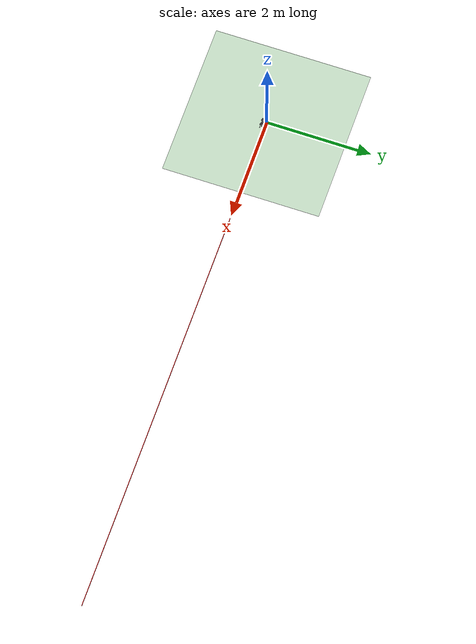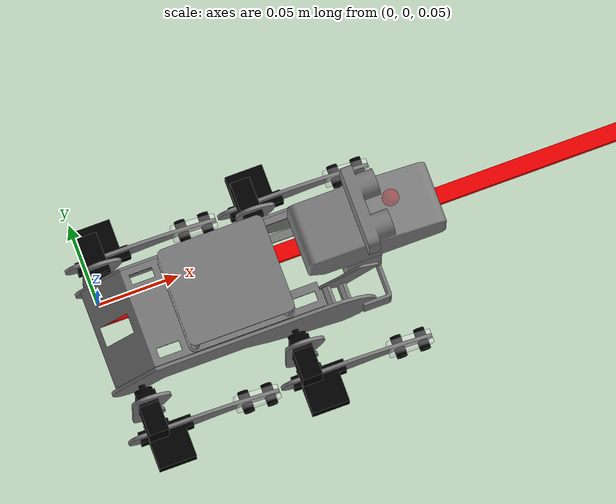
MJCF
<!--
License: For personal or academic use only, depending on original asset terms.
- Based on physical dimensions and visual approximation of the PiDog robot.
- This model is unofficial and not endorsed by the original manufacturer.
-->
<mujoco>
    <worldbody>
        <light directional='false' diffuse='.7 .7 .7' specular='0.03 0.03 0.03' pos='-1 -1.0 4.0' dir='1 1.0 -4'/>
        <geom name='ground' size="1.5 1.5 0.25" type="plane" contype="1" conaffinity="1" material="MatPlane" pos="0 0 0" rgba="0.8 0.9 0.8 1" class="collision"/>
        <geom size="1.5 1.5 0.25" type="plane" material="MatPlane" pos="0 0 0" rgba="0.8 0.9 0.8 1" class="visual"/>
        <camera name="fixed" pos="0 -0.7 0.7" quat="0.92388 0.382683 0 0" />
        <camera name="vil_camera" pos="0 -1.2 1.2" quat="0.92388 0.382683 0 0" />

        <geom name="x_axis" type="box" size="5 0.005 0.005" rgba="1.0 0.0 0.0 1.0" pos="5.0 0.0 0.0" class="visual"/>

        <body name="base" pos="0 0 0.1" euler="0.0 0.0 -1.57075">

            <geom name="eletronics_c0" mass="0.020" type="box" size="0.035 0.035 0.015" pos="0.03 0.07 0.05" class="collision"/>
            <geom name="eletronics_v" mesh="eletronics" class="visual"/>

            <geom name="torso_left_c0" mass="0.0116" mesh="torso_left_c0" class="collision"/>
            <geom name="torso_left_c1" mass="0.0116" mesh="torso_left_c1" class="collision"/>
            <geom name="torso_left_c2" mass="0.0116" mesh="torso_left_c2" class="collision"/>
            <geom name="torso_left_v" mesh="torso_left" class="visual"/>

            <geom name="torso_right_c0" mass="0.0116" mesh="torso_right_c0" class="collision"/>
            <geom name="torso_right_c1" mass="0.0116" mesh="torso_right_c1" class="collision"/>
            <geom name="torso_right_c2" mass="0.0116" mesh="torso_right_c2" class="collision"/>
            <geom name="torso_right_v" mesh="torso_right" class="visual"/>

            <geom name="back_c0" mass="0.004678" mesh="back_c0" class="collision"/>
            <geom name="back_c1" mass="0.004678" mesh="back_c1" class="collision"/>
            <geom name="back_c2" mass="0.004678" mesh="back_c2" class="collision"/>
            <geom name="back_c3" mass="0.004678" mesh="back_c3" class="collision"/>
            <geom name="back_c4" mass="0.004678" mesh="back_c4" class="collision"/>
            <geom name="back_c5" mass="0.004678" mesh="back_c5" class="collision"/>
            <geom name="back_c6" mass="0.004678" mesh="back_c6" class="collision"/>
            <geom name="back_v" mesh="back" class="visual"/>

            <geom name="chest_c0" mass="0.00354" mesh="chest_c0" class="collision"/>
            <geom name="chest_c1" mass="0.00354" mesh="chest_c1" class="collision"/>
            <geom name="chest_c2" mass="0.00354" mesh="chest_c2" class="collision"/>
            <geom name="chest_v" mesh="chest" class="visual"/>

            <site name="center" pos="0.03 0.06 0.0" size="0.007" rgba="0 1 0 0.125" />

            <!-- IMU sensor mounting site (center of body, electronics compartment) -->
            <site name="imu_site" pos="0.03 0.06 0.0" size="0.005" rgba="0 0 1 0.3" />

            <joint class="free"/>

            <!-- back rigth leg -->
            <body name="back_right_hip" pos="0.072 -0.005 0.01" euler="0.0 1.57075 0.0">

                <geom name="back_right_leg_b_c0" mass="0.00414" mesh="leg_b_c0" class="collision"/>
                <geom name="back_right_leg_b_c1" mass="0.00414" mesh="leg_b_c1" class="collision"/>
                <geom name="back_right_leg_b_v" mesh="leg_b" class="visual"/>
                <geom name="back_right_leg_b_sc" type="box" size="0.0355 0.012 0.003" rgba="1.0 0.0 0.0 0.175" pos="0.02575 0.012 0.0" class="self_collision"/>

                <geom name="back_right_leg_b_motor_c0" mass="0.00225" mesh="motor_c0" pos="0.01315 0.0096 0.0" euler="0 0 1.57075" class="collision"/>
                <geom name="back_right_leg_b_motor_c1" mass="0.00225" mesh="motor_c1" pos="0.01315 0.0096 0.0" euler="0 0 1.57075" class="collision"/>
                <geom name="back_right_leg_b_motor_c2" mass="0.00225" mesh="motor_c2" pos="0.01315 0.0096 0.0" euler="0 0 1.57075" class="collision"/>
                <geom name="back_right_leg_b_motor_c3" mass="0.00225" mesh="motor_c3" pos="0.01315 0.0096 0.0" euler="0 0 1.57075" class="collision"/>
                <geom name="back_right_leg_b_motor_v" mesh="motor" rgba="0.0 0.0 0.0 1" pos="0.01315 0.0096 0.0" euler="0 0 1.57075" class="visual"/>
                <geom name="back_right_leg_b_motor_sc" type="box" size="0.0075 0.016 0.016" rgba="1.0 0.0 0.0 0.175" pos="0.01315 0.0096 0.006" euler="0 0 1.57075" class="self_collision"/>

                <joint name="back_right_hip" type="hinge" axis="0 0 1" pos="0.0069 0.0096 0.0" damping="0.05" />

                <body name="back_right_knee" pos="0.061 0.003 0.0119" euler="0.0 0.0 1.57075" >

                    <geom name="back_right_leg_a_c0" mass="0.00730" mesh="leg_a_c0" class="collision"/>
                    <geom name="back_right_leg_a_v" mesh="leg_a" class="visual"/>
                    <geom name="back_right_leg_a_sc" type="box" size="0.047 0.010 0.006" rgba="1.0 0.0 0.0 0.175" pos="0.037 0.010 0.0" class="self_collision"/>

                    <geom name="back_right_leg_a_motor_c0" mass="0.00225" mesh="motor_c0" pos="0.01315 0.0096 0.0015" euler="0 0 1.57075" class="collision"/>
                    <geom name="back_right_leg_a_motor_c1" mass="0.00225" mesh="motor_c1" pos="0.01315 0.0096 0.0015" euler="0 0 1.57075" class="collision"/>
                    <geom name="back_right_leg_a_motor_c2" mass="0.00225" mesh="motor_c2" pos="0.01315 0.0096 0.0015" euler="0 0 1.57075" class="collision"/>
                    <geom name="back_right_leg_a_motor_c3" mass="0.00225" mesh="motor_c3" pos="0.01315 0.0096 0.0015" euler="0 0 1.57075" class="collision"/>
                    <geom name="back_right_leg_a_motor_v" mesh="motor" rgba="0.0 0.0 0.0 1" pos="0.01315 0.0096 0.0015" euler="0 0 1.57075" class="visual"/>
                    <geom name="back_right_leg_a_motor_sc" type="box" size="0.0075 0.016 0.016" rgba="1.0 0.0 0.0 0.175" pos="0.01315 0.0096 0.006" euler="0 0 1.57075" class="self_collision"/>

                    <geom name="back_right_acrylic_r_c0" mass="0.00158" mesh="acrylic_c0" rgba="0.0 0.0 0.0 1" pos="0.0 0.0 0.0" class="collision"/>
                    <geom name="back_right_acrylic_r_v" mesh="acrylic" rgba="1.0 1.0 1.0 0.3" pos="0.0 0.0 0.0" class="visual"/>

                    <geom name="back_right_acrylic_l_c0" mass="0.00158" mesh="acrylic" rgba="0.0 0.0 0.0 1" pos="0.0 0.0 -0.005" class="collision"/>
                    <geom name="back_right_acrylic_l_v" mesh="acrylic" rgba="1.0 1.0 1.0 0.3" pos="0.0 0.0 -0.005" class="visual"/>

                    <!-- rivet -->
                    <geom type="cylinder" size="0.00325 0.0065" rgba="0.0 0.0 0.0 1" pos="0.063 0.008 0.001" class="visual"/>
                    <geom type="cylinder" size="0.00325 0.0065" rgba="0.0 0.0 0.0 1" pos="0.0775 0.005 0.001" class="visual"/>

                    <joint name="back_right_knee" type="hinge" axis="0 0 1" pos="0.00815 0.0096 0.0" damping="0.05"/>
                </body>
            </body>

            <!-- front right leg -->
            <body name="front_right_hip" pos="0.072 0.09 0.01" euler="0.0 1.57075 0.0">

                <geom name="front_right_leg_b_c0" mass="0.00414" mesh="leg_b_c0" class="collision"/>
                <geom name="front_right_leg_b_c1" mass="0.00414" mesh="leg_b_c1" class="collision"/>
                <geom name="front_right_leg_b_v" mesh="leg_b" class="visual"/>
                <geom name="front_right_leg_b_sc" type="box" size="0.0355 0.012 0.003" rgba="1.0 0.0 0.0 0.175" pos="0.02575 0.012 0.0" class="self_collision"/>

                <geom name="front_right_leg_b_motor_c0" mass="0.00225" mesh="motor_c0" pos="0.01315 0.0096 0.0" euler="0 0 1.57075" class="collision"/>
                <geom name="front_right_leg_b_motor_c1" mass="0.00225" mesh="motor_c1" pos="0.01315 0.0096 0.0" euler="0 0 1.57075" class="collision"/>
                <geom name="front_right_leg_b_motor_c2" mass="0.00225" mesh="motor_c2" pos="0.01315 0.0096 0.0" euler="0 0 1.57075" class="collision"/>
                <geom name="front_right_leg_b_motor_c3" mass="0.00225" mesh="motor_c3" pos="0.01315 0.0096 0.0" euler="0 0 1.57075" class="collision"/>
                <geom name="front_right_leg_b_motor_v" mesh="motor" rgba="0.0 0.0 0.0 1" pos="0.01315 0.0096 0.0" euler="0 0 1.57075" class="visual"/>
                <geom name="front_right_leg_b_motor_sc" type="box" size="0.0075 0.016 0.016" rgba="1.0 0.0 0.0 0.175" pos="0.01315 0.0096 0.006" euler="0 0 1.57075" class="self_collision"/>

                <joint name="front_right_hip" type="hinge" axis="0 0 1" pos="0.0069 0.0096 0.0" damping="0.05" />

                <body name="front_right_knee" pos="0.061 0.003 0.0119" euler="0.0 0.0 1.57075" >

                    <geom name="front_right_leg_a_c0" mass="0.00730" mesh="leg_a_c0" class="collision"/>
                    <geom name="front_right_leg_a_v" mass="0.00730" mesh="leg_a" class="visual"/>
                    <geom name="front_right_leg_a_sc" type="box" size="0.047 0.010 0.006" rgba="1.0 0.0 0.0 0.175" pos="0.037 0.010 0.0" class="self_collision"/>

                    <geom name="front_right_leg_a_motor_c0" mass="0.00225" mesh="motor_c0" pos="0.01315 0.0096 0.0015" euler="0 0 1.57075" class="collision"/>
                    <geom name="front_right_leg_a_motor_c1" mass="0.00225" mesh="motor_c1" pos="0.01315 0.0096 0.0015" euler="0 0 1.57075" class="collision"/>
                    <geom name="front_right_leg_a_motor_c2" mass="0.00225" mesh="motor_c2" pos="0.01315 0.0096 0.0015" euler="0 0 1.57075" class="collision"/>
                    <geom name="front_right_leg_a_motor_c3" mass="0.00225" mesh="motor_c3" pos="0.01315 0.0096 0.0015" euler="0 0 1.57075" class="collision"/>
                    <geom name="front_right_leg_a_motor_v" mesh="motor" rgba="0.0 0.0 0.0 1" pos="0.01315 0.0096 0.0015" euler="0 0 1.57075" class="visual"/>
                    <geom name="front_right_leg_a_motor_sc" type="box" size="0.0075 0.016 0.016" rgba="1.0 0.0 0.0 0.175" pos="0.01315 0.0096 0.006" euler="0 0 1.57075" class="self_collision"/>

                    <geom name="front_right_acrylic_r_c0" mass="0.00158" mesh="acrylic_c0" rgba="0.0 0.0 0.0 1" pos="0.0 0.0 0.0" class="collision"/>
                    <geom name="front_right_acrylic_r_v" mesh="acrylic" rgba="1.0 1.0 1.0 0.3" pos="0.0 0.0 0.0" class="visual"/>

                    <geom name="front_right_acrylic_l_c0" mass="0.00158" mesh="acrylic" rgba="0.0 0.0 0.0 1" pos="0.0 0.0 -0.005" class="collision"/>
                    <geom name="front_right_acrylic_l_v" mesh="acrylic" rgba="1.0 1.0 1.0 0.3" pos="0.0 0.0 -0.005" class="visual"/>

                    <!-- rivet -->
                    <geom type="cylinder" size="0.00325 0.0065" rgba="0.0 0.0 0.0 1" pos="0.063 0.008 0.001" class="visual"/>
                    <geom type="cylinder" size="0.00325 0.0065" rgba="0.0 0.0 0.0 1" pos="0.0775 0.005 0.001" class="visual"/>

                    <joint name="front_right_knee" type="hinge" axis="0 0 1" pos="0.00815 0.0096 0.0" damping="0.05"/>
                </body>
            </body>

            <!-- back left leg -->
            <body name="back_left_hip" pos="-0.012 -0.005 0.01" euler="0.0 1.57075 0.0">

                <geom name="back_left_leg_b_c0" mass="0.00414" mesh="leg_b_c0" class="collision"/>
                <geom name="back_left_leg_b_c1" mass="0.00414" mesh="leg_b_c1" class="collision"/>
                <geom name="back_left_leg_b_v" mesh="leg_b" class="visual"/>
                <geom name="back_left_leg_b_sc" type="box" size="0.0355 0.012 0.003" rgba="1.0 0.0 0.0 0.175" pos="0.02575 0.012 0.0" class="self_collision"/>

                <geom name="back_left_leg_b_motor_c0" mass="0.00225" mesh="motor_c0" pos="0.01315 0.0096 0.0015" euler="0 3.1415 -1.57075" class="collision"/>
                <geom name="back_left_leg_b_motor_c1" mass="0.00225" mesh="motor_c1" pos="0.01315 0.0096 0.0015" euler="0 3.1415 -1.57075" class="collision"/>
                <geom name="back_left_leg_b_motor_c2" mass="0.00225" mesh="motor_c2" pos="0.01315 0.0096 0.0015" euler="0 3.1415 -1.57075" class="collision"/>
                <geom name="back_left_leg_b_motor_c3" mass="0.00225" mesh="motor_c3" pos="0.01315 0.0096 0.0015" euler="0 3.1415 -1.57075" class="collision"/>
                <geom name="back_left_leg_b_motor_v" mesh="motor" rgba="0.0 0.0 0.0 1" pos="0.01315 0.0096 0.0015" euler="0 3.1415 -1.57075" class="visual"/>
                <geom name="back_left_leg_b_motor_sc" type="box" size="0.0075 0.016 0.016" rgba="1.0 0.0 0.0 0.175" pos="0.01315 0.0096 -0.006" euler="0 3.1415 -1.57075" class="self_collision"/>

                <joint name="back_left_hip" type="hinge" axis="0 0 1" pos="0.0069 0.0096 0.0" damping="0.05" />

                <body name="back_left_knee" pos="0.061 0.003 -0.0119" euler="0.0 0.0 1.57075" >

                    <geom name="back_left_leg_a_c0" mass="0.00730" mesh="leg_a_c0" class="collision"/>
                    <geom name="back_left_leg_a_v" mass="0.00730" mesh="leg_a" class="visual"/>
                    <geom name="back_left_leg_a_sc" type="box" size="0.047 0.010 0.006" rgba="1.0 0.0 0.0 0.175" pos="0.037 0.010 0.0" class="self_collision"/>

                    <geom name="back_left_leg_a_motor_c0" mass="0.00225" mesh="motor_c0" pos="0.01315 0.0096 0.0015" euler="0 3.1415 -1.57075" class="collision"/>
                    <geom name="back_left_leg_a_motor_c1" mass="0.00225" mesh="motor_c1" pos="0.01315 0.0096 0.0015" euler="0 3.1415 -1.57075" class="collision"/>
                    <geom name="back_left_leg_a_motor_c2" mass="0.00225" mesh="motor_c2" pos="0.01315 0.0096 0.0015" euler="0 3.1415 -1.57075" class="collision"/>
                    <geom name="back_left_leg_a_motor_c3" mass="0.00225" mesh="motor_c3" pos="0.01315 0.0096 0.0015" euler="0 3.1415 -1.57075" class="collision"/>
                    <geom name="back_left_leg_a_motor_v" mesh="motor" rgba="0.0 0.0 0.0 1" pos="0.01315 0.0096 0.0015" euler="0 3.1415 -1.57075" class="visual"/>
                    <geom name="back_left_leg_a_motor_sc" type="box" size="0.0075 0.016 0.016" rgba="1.0 0.0 0.0 0.175" pos="0.01315 0.0096 -0.006" euler="0 3.1415 -1.57075" class="self_collision"/>

                    <geom name="back_left_acrylic_r_c0" mass="0.00158" mesh="acrylic_c0" rgba="0.0 0.0 0.0 1" pos="0.0 0.0 0.0" class="collision"/>
                    <geom name="back_left_acrylic_r_v" mesh="acrylic" rgba="1.0 1.0 1.0 0.3" pos="0.0 0.0 0.0" class="visual"/>

                    <geom name="back_left_acrylic_l_c0" mass="0.00158" mesh="acrylic" rgba="0.0 0.0 0.0 1" pos="0.0 0.0 -0.005" class="collision"/>
                    <geom name="back_left_acrylic_l_v" mesh="acrylic" rgba="1.0 1.0 1.0 0.3" pos="0.0 0.0 -0.005" class="visual"/>

                    <!-- rivet -->
                    <geom type="cylinder" size="0.00325 0.0065" rgba="0.0 0.0 0.0 1" pos="0.063 0.008 0.001" class="visual"/>
                    <geom type="cylinder" size="0.00325 0.0065" rgba="0.0 0.0 0.0 1" pos="0.0775 0.005 0.001" class="visual"/>

                    <joint name="back_left_knee" type="hinge" axis="0 0 1" pos="0.00815 0.0096 0.0" damping="0.05"/>
                </body>
            </body>

            <!-- front left leg -->
            <body name="front_left_hip" pos="-0.012 0.09 0.01" euler="0.0 1.57075 0.0">

                <geom name="front_left_leg_b_c0" mass="0.00414" mesh="leg_b_c0" class="collision"/>
                <geom name="front_left_leg_b_c1" mass="0.00414" mesh="leg_b_c1" class="collision"/>
                <geom name="front_left_leg_b_v" mesh="leg_b" class="visual"/>
                <geom name="front_left_leg_b_sc" type="box" size="0.0355 0.012 0.003" rgba="1.0 0.0 0.0 0.175" pos="0.02575 0.012 0.0" class="self_collision"/>

                <geom name="front_left_leg_b_motor_c0" mass="0.00225" mesh="motor_c0" pos="0.01315 0.0096 0.0015" euler="0 3.1415 -1.57075" class="collision"/>
                <geom name="front_left_leg_b_motor_c1" mass="0.00225" mesh="motor_c1" pos="0.01315 0.0096 0.0015" euler="0 3.1415 -1.57075" class="collision"/>
                <geom name="front_left_leg_b_motor_c2" mass="0.00225" mesh="motor_c2" pos="0.01315 0.0096 0.0015" euler="0 3.1415 -1.57075" class="collision"/>
                <geom name="front_left_leg_b_motor_c3" mass="0.00225" mesh="motor_c3" pos="0.01315 0.0096 0.0015" euler="0 3.1415 -1.57075" class="collision"/>
                <geom name="front_left_leg_b_motor_v" mesh="motor" rgba="0.0 0.0 0.0 1" pos="0.01315 0.0096 0.0015" euler="0 3.1415 -1.57075" class="visual"/>
                <geom name="front_left_leg_b_motor_sc" type="box" size="0.0075 0.016 0.016" rgba="1.0 0.0 0.0 0.175" pos="0.01315 0.0096 -0.006" euler="0 3.1415 -1.57075" class="self_collision"/>

                <joint name="front_left_hip" type="hinge" axis="0 0 1" pos="0.0069 0.0096 0.0" damping="0.05" />

                <body name="front_left_knee" pos="0.061 0.003 -0.0119" euler="0.0 0.0 1.57075" >

                    <geom name="front_left_leg_a_c0" mass="0.00730" mesh="leg_a_c0" class="collision"/>
                    <geom name="front_left_leg_a_v" mass="0.00730" mesh="leg_a" class="visual"/>
                    <geom name="front_left_leg_a_sc" type="box" size="0.047 0.010 0.006" rgba="1.0 0.0 0.0 0.175" pos="0.037 0.010 0.0" class="self_collision"/>

                    <geom name="front_left_leg_a_motor_c0" mass="0.00225" mesh="motor_c0" pos="0.01315 0.0096 0.0015" euler="0 3.1415 -1.57075" class="collision"/>
                    <geom name="front_left_leg_a_motor_c1" mass="0.00225" mesh="motor_c1" pos="0.01315 0.0096 0.0015" euler="0 3.1415 -1.57075" class="collision"/>
                    <geom name="front_left_leg_a_motor_c2" mass="0.00225" mesh="motor_c2" pos="0.01315 0.0096 0.0015" euler="0 3.1415 -1.57075" class="collision"/>
                    <geom name="front_left_leg_a_motor_c3" mass="0.00225" mesh="motor_c3" pos="0.01315 0.0096 0.0015" euler="0 3.1415 -1.57075" class="collision"/>
                    <geom name="front_left_leg_a_motor_v" mesh="motor" rgba="0.0 0.0 0.0 1" pos="0.01315 0.0096 0.0015" euler="0 3.1415 -1.57075" class="visual"/>
                    <geom name="front_left_leg_a_motor_sc" type="box" size="0.0075 0.016 0.016" rgba="1.0 0.0 0.0 0.175" pos="0.01315 0.0096 -0.006" euler="0 3.1415 -1.57075" class="self_collision"/>

                    <geom name="front_left_acrylic_r_c0" mass="0.00158" mesh="acrylic_c0" rgba="0.0 0.0 0.0 1" pos="0.0 0.0 0.0" class="collision"/>
                    <geom name="front_left_acrylic_r_v" mesh="acrylic" rgba="1.0 1.0 1.0 0.3" pos="0.0 0.0 0.0" class="visual"/>

                    <geom name="front_left_acrylic_l_c0" mass="0.00158" mesh="acrylic" rgba="0.0 0.0 0.0 1" pos="0.0 0.0 -0.005" class="collision"/>
                    <geom name="front_left_acrylic_l_v" mesh="acrylic" rgba="1.0 1.0 1.0 0.3" pos="0.0 0.0 -0.005" class="visual"/>

                    <!-- rivet -->
                    <geom type="cylinder" size="0.00325 0.0065" rgba="0.0 0.0 0.0 1" pos="0.063 0.008 0.001" class="visual"/>
                    <geom type="cylinder" size="0.00325 0.0065" rgba="0.0 0.0 0.0 1" pos="0.0775 0.005 0.001" class="visual"/>

                    <joint name="front_left_knee" type="hinge" axis="0 0 1" pos="0.00815 0.0096 0.0" damping="0.05"/>
                </body>
            </body>

            <body name="neck1" pos="0.028 0.135 0.026" euler="0 1.57075 0.785375">

                <geom name="neck1_c0" mass="0.004678" mesh="neck1_c0" class="collision"/>
                <geom name="neck1_c1" mass="0.004678" mesh="neck1_c1" class="collision"/>
                <geom name="neck1_c2" mass="0.004678" mesh="neck1_c2" class="collision"/>
                <geom name="neck1_c3" mass="0.004678" mesh="neck1_c3" class="collision"/>
                <geom name="neck1_c4" mass="0.004678" mesh="neck1_c4" class="collision"/>
                <geom name="neck1_c5" mass="0.004678" mesh="neck1_c5" class="collision"/>
                <geom name="neck1_v"  mesh="neck1" class="visual"/>

                <body name="neck2" pos="0.0 0.0175 0.0025" euler="0.0 1.57075 0.0">

                    <geom name="neck2_c0" mass="0.004678" mesh="neck2_c0" class="collision"/>
                    <geom name="neck2_c1" mass="0.004678" mesh="neck2_c1" class="collision"/>
                    <geom name="neck2_c2" mass="0.004678" mesh="neck2_c2" class="collision"/>
                    <geom name="neck2_c3" mass="0.004678" mesh="neck2_c3" class="collision"/>
                    <geom name="neck2_c4" mass="0.004678" mesh="neck2_c4" class="collision"/>
                    <geom name="neck2_c5" mass="0.004678" mesh="neck2_c5" class="collision"/>
                    <geom name="neck2_c6" mass="0.004678" mesh="neck2_c5" class="collision"/>
                    <geom name="neck2_v"  mesh="neck2" class="visual" pos="0 0.0 0.0" euler="-0.785375 0 0"/>

                    <body name="neck3" pos="0.0015 0.0115 -0.0075" euler="-0.785375 0 0.0">

                        <geom name="neck3_c0" mass="0.004678" mesh="neck3_c0" class="collision"/>
                        <geom name="neck3_c1" mass="0.004678" mesh="neck3_c1" class="collision"/>
                        <geom name="neck3_c2" mass="0.004678" mesh="neck3_c2" class="collision"/>
                        <geom name="neck3_v"  mesh="neck3" class="visual" pos="0 0.0 0.0" euler="0 0 0"/>

                        <body name="head" pos="0.0 0.0375 0.005" euler="0.0 0 0.0">

                            <geom name="head_c0" mass="0.004678" mesh="head_c0" class="collision"/>
                            <geom name="head_c1" mass="0.004678" mesh="head_c1" class="collision"/>
                            <geom name="head_c2" mass="0.004678" mesh="head_c2" class="collision"/>
                            <geom name="head_c3" mass="0.004678" mesh="head_c3" class="collision"/>
                            <geom name="head_c4" mass="0.004678" mesh="head_c4" class="collision"/>
                            <geom name="head_c5" mass="0.004678" mesh="head_c5" class="collision"/>
                            <geom name="head_c6" mass="0.004678" mesh="head_c6" class="collision"/>
                            <geom name="head_v"  mesh="head" class="visual" pos="0 0.0 0.0" euler="0 0 0"/>

                            <!-- Front-facing camera (OV5647 specs: ~62° HFOV, 49° VFOV) -->
                            <!-- Mounted in nose area, facing forward -->
                            <camera name="pidog_camera"
                                    pos="0.0 0.045 0.01"
                                    euler="0 0 0"
                                    fovy="49"
                                    mode="fixed"/>

                            <!-- Ultrasonic sensor mounting site (above nose, facing forward) -->
                            <site name="ultrasonic_site"
                                  pos="0.0 0.04 0.015"
                                  euler="0 0 0"
                                  size="0.005"
                                  rgba="1 0 0 0.3" />

                            <geom name="eyes_c0" mass="0.004678" mesh="eyes_c0" class="collision"/>
                            <geom name="eyes_c1" mass="0.004678" mesh="eyes_c1" class="collision"/>
                            <geom name="eyes_c2" mass="0.004678" mesh="eyes_c2" class="collision"/>
                            <geom name="eyes_c3" mass="0.004678" mesh="eyes_c3" class="collision"/>
                            <geom name="eyes_c4" mass="0.004678" mesh="eyes_c4" class="collision"/>
                            <geom name="eyes_c5" mass="0.004678" mesh="eyes_c5" class="collision"/>
                            <geom name="eyes_c6" mass="0.004678" mesh="eyes_c6" class="collision"/>
                            <geom name="eyes_c7" mass="0.004678" mesh="eyes_c0" class="collision"/>
                            <geom name="eyes_c8" mass="0.004678" mesh="eyes_c1" class="collision"/>
                            <geom name="eyes_c9" mass="0.004678" mesh="eyes_c2" class="collision"/>
                            <geom name="eyes_c10" mass="0.004678" mesh="eyes_c3" class="collision"/>
                            <geom name="eyes_c11" mass="0.004678" mesh="eyes_c4" class="collision"/>
                            <geom name="eyes_v"  mesh="eyes" class="visual" pos="0 0.035 0.005" euler="0 0 0"/>

                        </body>

                    </body>

                </body>

            </body>

        </body>

    </worldbody>

    <include file='pidog_assets.xml'/>
    <include file='pidog_actuators.xml'/>
    <include file='pidog_sensors.xml'/>

</mujoco>

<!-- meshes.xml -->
<mujocoinclude>
    <asset>
        <texture builtin="gradient" height="100" rgb1="1 1 1" rgb2="0 0 0" type="skybox" width="100" />
        <texture builtin="flat" height="1278" mark="cross" markrgb="1 1 1" name="texgeom"
            random="0.01" rgb1="0.8 0.6 0.4" rgb2="0.8 0.6 0.4" type="cube" width="127" />
        <texture builtin="checker" height="100" name="texplane" rgb1="0 0 0" rgb2="0.8 0.8 0.8"
            type="2d" width="100" />
        <material name="MatPlane" reflectance="0.5" shininess="1" specular="1" texrepeat="60 60"
            texture="texplane" />
        <material name="geom" texture="texgeom" texuniform="true" />

        <mesh name="torso_left_c2" file="assets/meshes/torso_left/torso_left_collision_2.obj" />
        <mesh name="torso_left" file="assets/meshes/torso_left/torso_left.obj" />
        <mesh name="torso_left_c1" file="assets/meshes/torso_left/torso_left_collision_1.obj" />
        <mesh name="torso_left_c0" file="assets/meshes/torso_left/torso_left_collision_0.obj" />
        <mesh name="eyes_c4" file="assets/meshes/eyes/eyes_collision_4.obj" />
        <mesh name="eyes_c12" file="assets/meshes/eyes/eyes_collision_12.obj" />
        <mesh name="eyes_c5" file="assets/meshes/eyes/eyes_collision_5.obj" />
        <mesh name="eyes_c10" file="assets/meshes/eyes/eyes_collision_10.obj" />
        <mesh name="eyes_c1" file="assets/meshes/eyes/eyes_collision_1.obj" />
        <mesh name="eyes_c3" file="assets/meshes/eyes/eyes_collision_3.obj" />
        <mesh name="eyes_c8" file="assets/meshes/eyes/eyes_collision_8.obj" />
        <mesh name="eyes_c9" file="assets/meshes/eyes/eyes_collision_9.obj" />
        <mesh name="eyes_c11" file="assets/meshes/eyes/eyes_collision_11.obj" />
        <mesh name="eyes" file="assets/meshes/eyes/eyes.obj" />
        <mesh name="eyes_c2" file="assets/meshes/eyes/eyes_collision_2.obj" />
        <mesh name="eyes_c0" file="assets/meshes/eyes/eyes_collision_0.obj" />
        <mesh name="eyes_c6" file="assets/meshes/eyes/eyes_collision_6.obj" />
        <mesh name="eyes_c7" file="assets/meshes/eyes/eyes_collision_7.obj" />
        <mesh name="leg_b_c1" file="assets/meshes/leg_b/leg_b_collision_1.obj" />
        <mesh name="leg_b_c0" file="assets/meshes/leg_b/leg_b_collision_0.obj" />
        <mesh name="leg_b" file="assets/meshes/leg_b/leg_b.obj" />
        <mesh name="neck2_c1" file="assets/meshes/neck2/neck2_collision_1.obj" />
        <mesh name="neck2_c0" file="assets/meshes/neck2/neck2_collision_0.obj" />
        <mesh name="neck2" file="assets/meshes/neck2/neck2.obj" />
        <mesh name="neck2_c4" file="assets/meshes/neck2/neck2_collision_4.obj" />
        <mesh name="neck2_c5" file="assets/meshes/neck2/neck2_collision_5.obj" />
        <mesh name="neck2_c2" file="assets/meshes/neck2/neck2_collision_2.obj" />
        <mesh name="neck2_c3" file="assets/meshes/neck2/neck2_collision_3.obj" />
        <mesh name="neck2_c6" file="assets/meshes/neck2/neck2_collision_6.obj" />
        <mesh name="neck3_c1" file="assets/meshes/neck3/neck3_collision_1.obj" />
        <mesh name="neck3_c2" file="assets/meshes/neck3/neck3_collision_2.obj" />
        <mesh name="neck3" file="assets/meshes/neck3/neck3.obj" />
        <mesh name="neck3_c0" file="assets/meshes/neck3/neck3_collision_0.obj" />
        <mesh name="torso_right_c2" file="assets/meshes/torso_right/torso_right_collision_2.obj" />
        <mesh name="torso_right" file="assets/meshes/torso_right/torso_right.obj" />
        <mesh name="torso_right_c1" file="assets/meshes/torso_right/torso_right_collision_1.obj" />
        <mesh name="torso_right_c0" file="assets/meshes/torso_right/torso_right_collision_0.obj" />
        <mesh name="leg_a" file="assets/meshes/leg_a/leg_a.obj" />
        <mesh name="leg_a_c0" file="assets/meshes/leg_a/leg_a_collision_0.obj" />
        <mesh name="neck1_c2" file="assets/meshes/neck1/neck1_collision_2.obj" />
        <mesh name="neck1" file="assets/meshes/neck1/neck1.obj" />
        <mesh name="neck1_c0" file="assets/meshes/neck1/neck1_collision_0.obj" />
        <mesh name="neck1_c5" file="assets/meshes/neck1/neck1_collision_5.obj" />
        <mesh name="neck1_c4" file="assets/meshes/neck1/neck1_collision_4.obj" />
        <mesh name="neck1_c3" file="assets/meshes/neck1/neck1_collision_3.obj" />
        <mesh name="neck1_c1" file="assets/meshes/neck1/neck1_collision_1.obj" />
        <mesh name="motor_c0" file="assets/meshes/motor/motor_collision_0.obj" />
        <mesh name="motor_c2" file="assets/meshes/motor/motor_collision_2.obj" />
        <mesh name="motor_c1" file="assets/meshes/motor/motor_collision_1.obj" />
        <mesh name="motor_c3" file="assets/meshes/motor/motor_collision_3.obj" />
        <mesh name="motor" file="assets/meshes/motor/motor.obj" />
        <mesh name="head_c1" file="assets/meshes/head/head_collision_1.obj" />
        <mesh name="head_c5" file="assets/meshes/head/head_collision_5.obj" />
        <mesh name="head_c6" file="assets/meshes/head/head_collision_6.obj" />
        <mesh name="head_c4" file="assets/meshes/head/head_collision_4.obj" />
        <mesh name="head_c2" file="assets/meshes/head/head_collision_2.obj" />
        <mesh name="head" file="assets/meshes/head/head.obj" />
        <mesh name="head_c3" file="assets/meshes/head/head_collision_3.obj" />
        <mesh name="head_c8" file="assets/meshes/head/head_collision_8.obj" />
        <mesh name="head_c7" file="assets/meshes/head/head_collision_7.obj" />
        <mesh name="head_c0" file="assets/meshes/head/head_collision_0.obj" />
        <mesh name="back" file="assets/meshes/back/back.obj" />
        <mesh name="back_c2" file="assets/meshes/back/back_collision_2.obj" />
        <mesh name="back_c0" file="assets/meshes/back/back_collision_0.obj" />
        <mesh name="back_c7" file="assets/meshes/back/back_collision_7.obj" />
        <mesh name="back_c5" file="assets/meshes/back/back_collision_5.obj" />
        <mesh name="back_c1" file="assets/meshes/back/back_collision_1.obj" />
        <mesh name="back_c6" file="assets/meshes/back/back_collision_6.obj" />
        <mesh name="back_c4" file="assets/meshes/back/back_collision_4.obj" />
        <mesh name="back_c3" file="assets/meshes/back/back_collision_3.obj" />
        <mesh name="eletronics_c4" file="assets/meshes/eletronics/eletronics_collision_4.obj" />
        <mesh name="eletronics" file="assets/meshes/eletronics/eletronics.obj" />
        <mesh name="eletronics_c0" file="assets/meshes/eletronics/eletronics_collision_0.obj" />
        <mesh name="eletronics_c2" file="assets/meshes/eletronics/eletronics_collision_2.obj" />
        <mesh name="eletronics_c5" file="assets/meshes/eletronics/eletronics_collision_5.obj" />
        <mesh name="eletronics_c3" file="assets/meshes/eletronics/eletronics_collision_3.obj" />
        <mesh name="eletronics_c1" file="assets/meshes/eletronics/eletronics_collision_1.obj" />
        <mesh name="chest_c0" file="assets/meshes/chest/chest_collision_0.obj" />
        <mesh name="chest_c2" file="assets/meshes/chest/chest_collision_2.obj" />
        <mesh name="chest_c1" file="assets/meshes/chest/chest_collision_1.obj" />
        <mesh name="chest" file="assets/meshes/chest/chest.obj" />
        <mesh name="acrylic_c0" file="assets/meshes/acrylic/acrylic_collision_0.obj" />
        <mesh name="acrylic" file="assets/meshes/acrylic/acrylic.obj" />
    </asset>
</mujocoinclude>

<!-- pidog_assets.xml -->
<mujocoinclude>
    <compiler inertiafromgeom="true" angle="radian"/>
    <option gravity="0 0 -9.81" timestep="0.001" integrator="RK4" iterations="50" noslip_iterations="50"/>
    <visual>
        <global offwidth="3024" offheight="1680" />
        <quality shadowsize="4096" offsamples="8" />
        <map force="0.1" fogend="5" />
    </visual>
    <default class="main">
        <mesh scale="1.0 1.0 1.0"/>
        <joint limited="true" margin="0.01" armature="0.001" damping="0.05" frictionloss="0.002" solimplimit="0 .9 .01" solreflimit=".02 1" range="-1.57075 1.57075"/>
        <position kp="20.0" ctrlrange="-1.57075 1.57075" gear="1" forcerange="-1 1"/>
        <geom friction="1 0.5 0.01" margin="0.0" gap="0.0"  group="4" contype="1" conaffinity="1"/>
        <default class="collision">
            <geom conaffinity="0" group="4" type="mesh" solref="0.005 1" solimp="0.95 0.99 0.001"/>
        </default>
        <default class="self_collision">
            <geom contype="2" conaffinity="2" group="3" solref="0.005 1" solimp="0.95 0.99 0.001"  rgba="1.0 0.0 0.0 0.8" />
        </default>
        <default class="visual">
            <geom type="mesh" contype="0" conaffinity="0" group="1" rgba="0.5 0.5 0.5 1" />
        </default>
        <default class="free">
            <joint type="free" limited="false" armature="0" damping="0" />
        </default>
    </default>

    <include file='meshes.xml'/>

    <!-- self collisions -->
    <contact>

        <!-- same leg motor -->
        <pair geom1="back_right_leg_a_c0" geom2="back_right_leg_b_motor_c0" condim="3"/>
        <pair geom1="back_right_leg_a_c0" geom2="back_right_leg_b_motor_c1" condim="3"/>
        <pair geom1="back_right_leg_a_c0" geom2="back_right_leg_b_motor_c2" condim="3"/>
        <pair geom1="back_right_leg_a_c0" geom2="back_right_leg_b_motor_c3" condim="3"/>

        <pair geom1="front_right_leg_a_c0" geom2="front_right_leg_b_motor_c0" condim="3"/>
        <pair geom1="front_right_leg_a_c0" geom2="front_right_leg_b_motor_c1" condim="3"/>
        <pair geom1="front_right_leg_a_c0" geom2="front_right_leg_b_motor_c2" condim="3"/>
        <pair geom1="front_right_leg_a_c0" geom2="front_right_leg_b_motor_c3" condim="3"/>

        <pair geom1="back_left_leg_a_c0" geom2="back_left_leg_b_motor_c0" condim="3"/>
        <pair geom1="back_left_leg_a_c0" geom2="back_left_leg_b_motor_c1" condim="3"/>
        <pair geom1="back_left_leg_a_c0" geom2="back_left_leg_b_motor_c2" condim="3"/>
        <pair geom1="back_left_leg_a_c0" geom2="back_left_leg_b_motor_c3" condim="3"/>

        <pair geom1="front_left_leg_a_c0" geom2="front_left_leg_b_motor_c0" condim="3"/>
        <pair geom1="front_left_leg_a_c0" geom2="front_left_leg_b_motor_c1" condim="3"/>
        <pair geom1="front_left_leg_a_c0" geom2="front_left_leg_b_motor_c2" condim="3"/>
        <pair geom1="front_left_leg_a_c0" geom2="front_left_leg_b_motor_c3" condim="3"/>

        <!-- same side legs  -->
        <pair geom1="back_right_leg_a_c0" geom2="front_right_leg_a_c0" condim="3"/>

        <pair geom1="back_right_acrylic_r_c0" geom2="front_right_leg_a_c0" condim="3"/>
        <pair geom1="back_right_acrylic_l_c0" geom2="front_right_leg_a_c0" condim="3"/>
        <pair geom1="back_right_leg_a_c0" geom2="front_right_acrylic_r_c0" condim="3"/>
        <pair geom1="back_right_leg_a_c0" geom2="front_right_acrylic_l_c0" condim="3"/>

        <pair geom1="back_left_leg_a_c0" geom2="front_left_leg_a_c0" condim="3"/>

        <pair geom1="back_left_acrylic_r_c0" geom2="front_left_leg_a_c0" condim="3"/>
        <pair geom1="back_left_acrylic_l_c0" geom2="front_left_leg_a_c0" condim="3"/>
        <pair geom1="back_left_leg_a_c0" geom2="front_left_acrylic_r_c0" condim="3"/>
        <pair geom1="back_left_leg_a_c0" geom2="front_left_acrylic_l_c0" condim="3"/>

    </contact>

   <actuator>
        <position joint="front_left_hip"/>
        <position joint="front_left_knee"/>

        <position joint="front_right_hip"/>
        <position joint="front_right_knee"/>

        <position joint="back_left_hip"/>
        <position joint="back_left_knee"/>

        <position joint="back_right_hip"/>
        <position joint="back_right_knee"/>
    </actuator>

 </mujocoinclude>

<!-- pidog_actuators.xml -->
<mujoco>
    <actuator>

        <!-- Back Right Leg -->
        <position name="back_right_hip_actuator"
                  joint="back_right_hip"
                  forcerange="-0.216 0.216"
                  kp="5.0"
                  kv="2.5"
                  gear="1"/>

        <position name="back_right_knee_actuator"
                  joint="back_right_knee"
                  forcerange="-0.216 0.216"
                  kp="5.0"
                  kv="2.5"
                  gear="1"/>

        <!-- Front Right Leg -->
        <position name="front_right_hip_actuator"
                  joint="front_right_hip"
                  forcerange="-0.216 0.216"
                  kp="5.0"
                  kv="2.5"
                  gear="1"/>

        <position name="front_right_knee_actuator"
                  joint="front_right_knee"
                  forcerange="-0.216 0.216"
                  kp="5.0"
                  kv="2.5"
                  gear="1"/>

        <!-- Back Left Leg -->
        <position name="back_left_hip_actuator"
                  joint="back_left_hip"
                  forcerange="-0.216 0.216"
                  kp="5.0"
                  kv="2.5"
                  gear="1"/>

        <position name="back_left_knee_actuator"
                  joint="back_left_knee"
                  forcerange="-0.216 0.216"
                  kp="5.0"
                  kv="2.5"
                  gear="1"/>

        <!-- Front Left Leg -->
        <position name="front_left_hip_actuator"
                  joint="front_left_hip"
                  forcerange="-0.216 0.216"
                  kp="5.0"
                  kv="2.5"
                  gear="1"/>

        <position name="front_left_knee_actuator"
                  joint="front_left_knee"
                  forcerange="-0.216 0.216"
                  kp="5.0"
                  kv="2.5"
                  gear="1"/>
    </actuator>
</mujoco>

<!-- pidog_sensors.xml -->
<mujoco>
  <sensor>
    <!-- ==================== CAMERA SENSOR ==================== -->
    <!-- Note: Camera is defined in worldbody/body, not in sensor section -->
    <!-- See pidog.xml for camera definition in head body -->

    <!-- ==================== ULTRASONIC RANGEFINDER ==================== -->
    <!-- HC-SR04 Ultrasonic Distance Sensor -->
    <!-- Range: 2cm - 400cm (0.02m - 4.0m) -->
    <!-- Accuracy: ±3mm (0.003m) -->
    <!-- Beam angle: <15° (narrow cone along Z-axis) -->

    <rangefinder name="ultrasonic"
                 site="ultrasonic_site"
                 cutoff="4.0"
                 noise="0.003"/>

    <!-- ==================== IMU SENSORS (SH3001) ==================== -->
    <!-- Mounted at center of body (electronics compartment) -->

    <!-- 3-Axis Accelerometer -->
    <!-- Range: ±16g (default, to handle impacts and dynamic motion) -->
    <!-- Noise: ~0.01 m/s² (estimated, manufacturer datasheet not public) -->
    <!-- Output: [ax, ay, az] in m/s² (includes gravity) -->
    <!-- Note: SH3001 supports ±2g/±4g/±8g/±16g ranges, default is ±16g -->

    <accelerometer name="imu_accel"
                   site="imu_site"
                   noise="0.01"/>

    <!-- 3-Axis Gyroscope -->
    <!-- Range: ±2000°/s (~34.9 rad/s, default) for dynamic movements -->
    <!-- Noise: ~0.005 rad/s (estimated, manufacturer datasheet not public) -->
    <!-- Output: [ωx, ωy, ωz] in rad/s -->
    <!-- Note: SH3001 supports ±125/±250/±500/±1000/±2000°/s, default is ±2000°/s -->

    <gyro name="imu_gyro"
          site="imu_site"
          noise="0.005"/>

    <!-- ==================== OPTIONAL SENSORS ==================== -->
    <!-- These can be enabled if needed for future enhancements -->

    <!-- Magnetometer (if using 9-DOF IMU instead of 6-DOF) -->
    <!-- Currently commented out - MPU6050 doesn't have magnetometer -->

    <!-- Frame-based sensors for debugging (optional) -->
    <!-- Uncomment these to get direct pose/velocity from simulation -->

  </sensor>
</mujoco>
